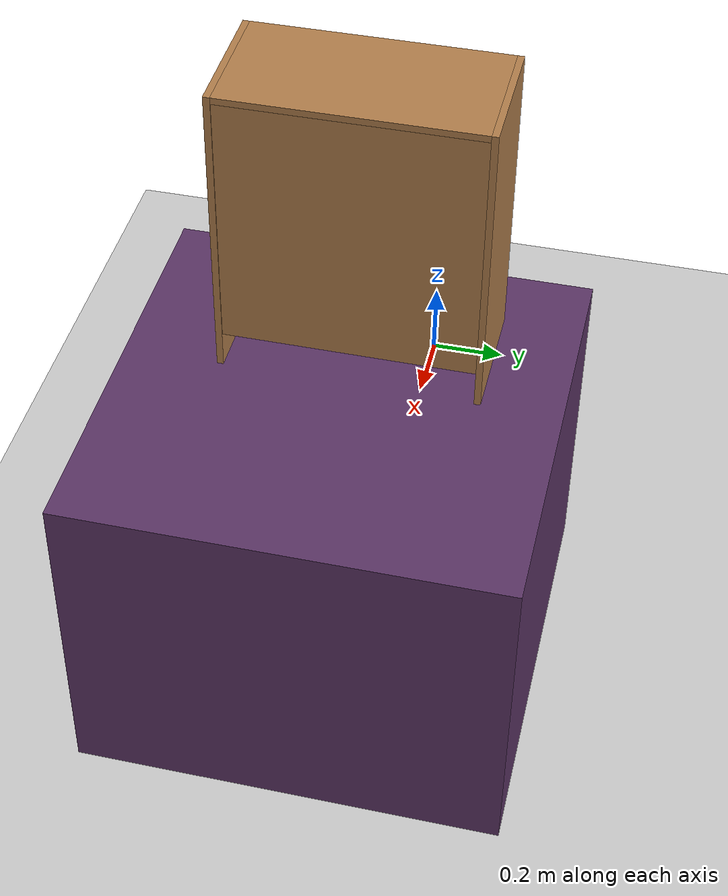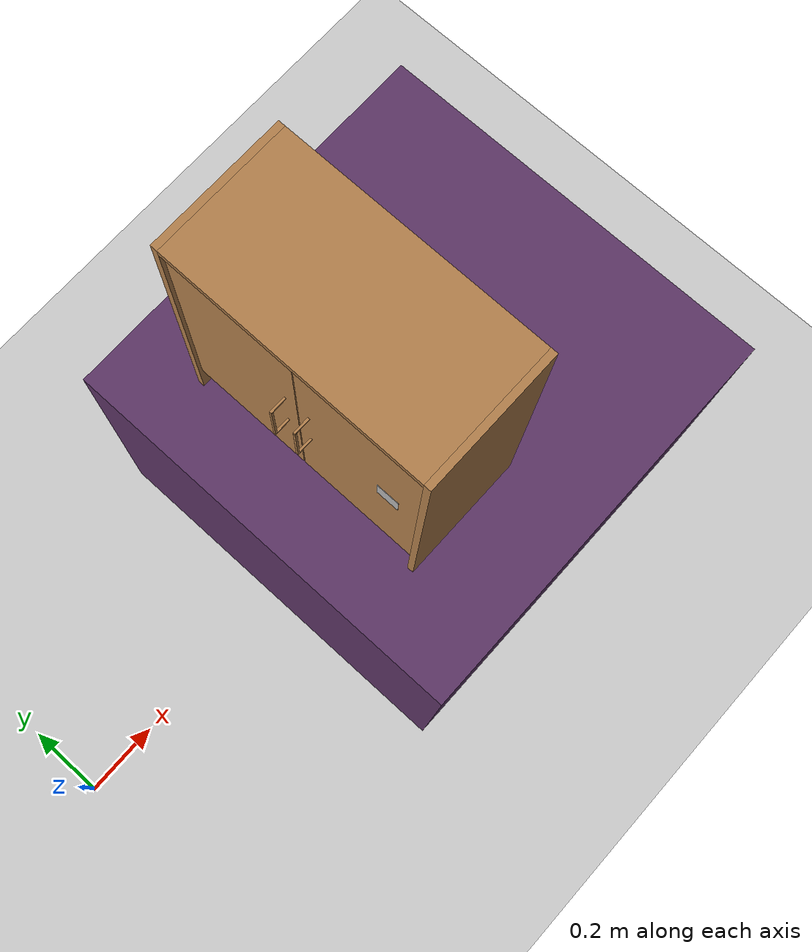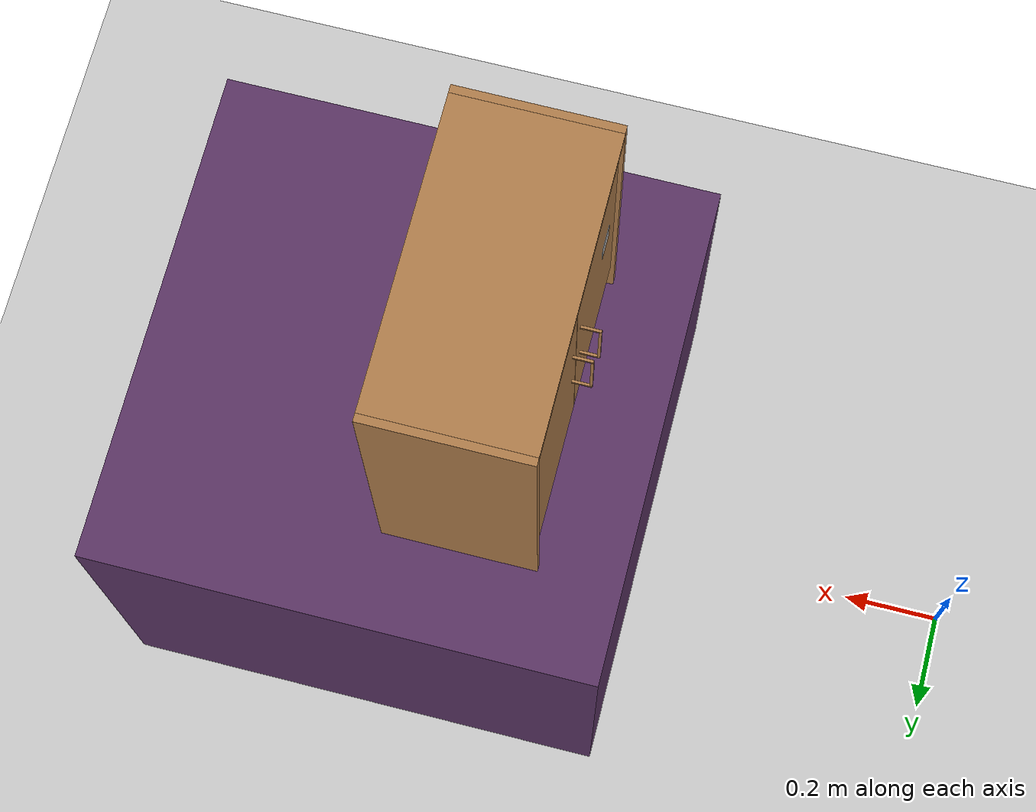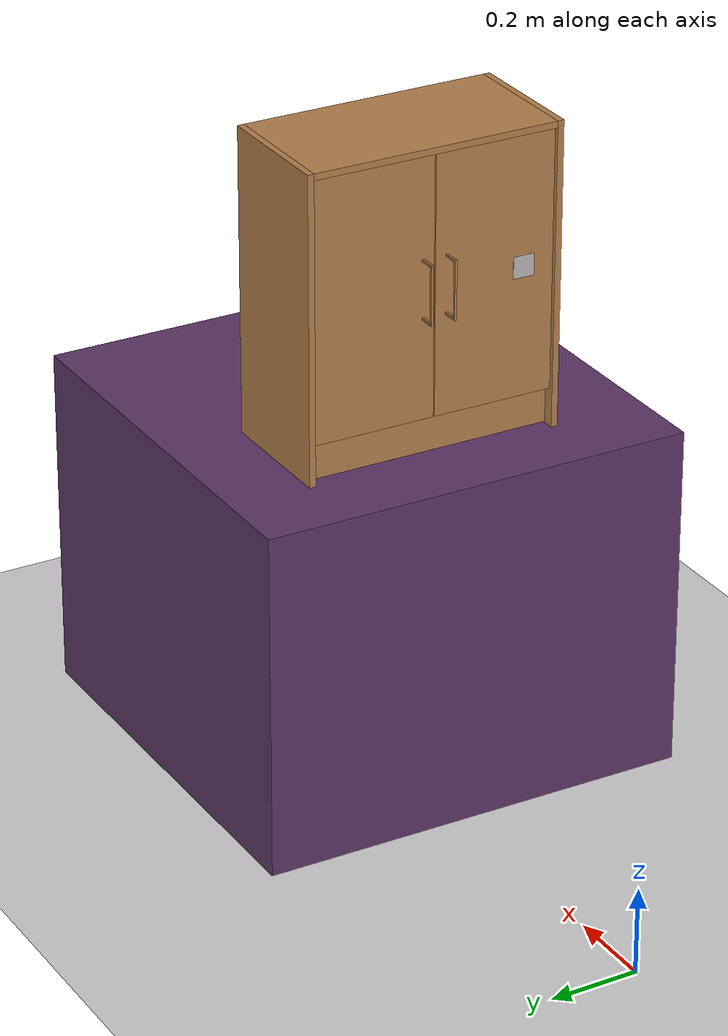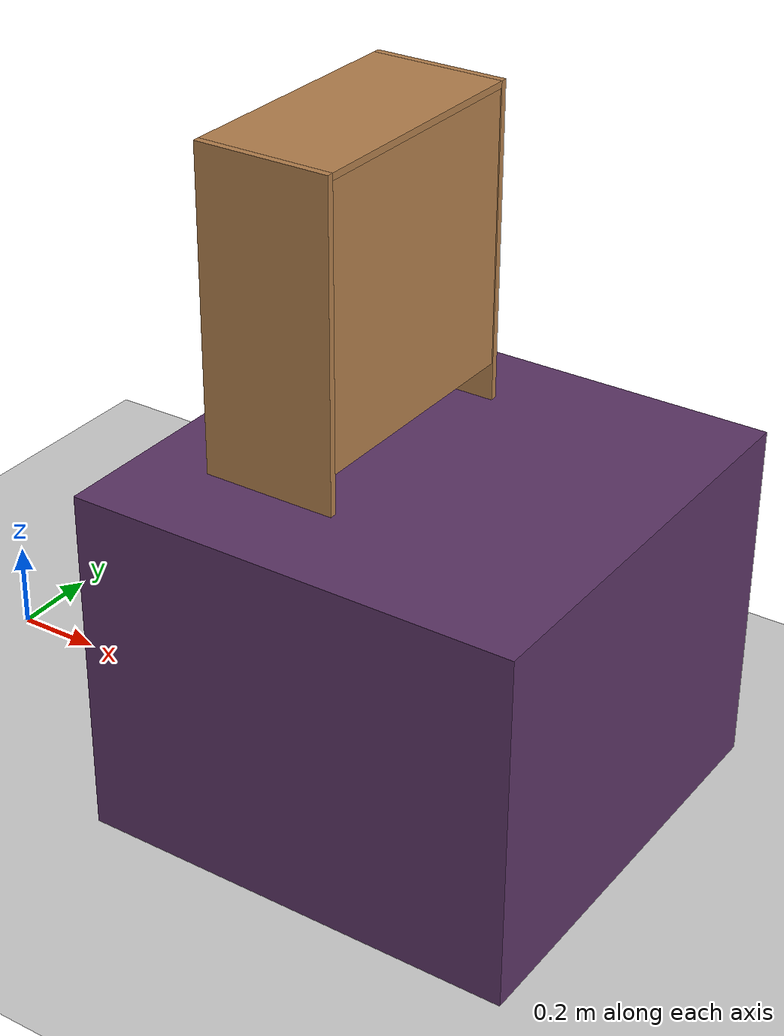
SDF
<sdf version="1.6">
 <world name="default">
  <light name="sun" type="directional">
   <pose>0 0 10 0 -0 0</pose>
   <diffuse>0.8 0.8 0.8 1</diffuse>
   <specular>0.2 0.2 0.2 1</specular>
   <attenuation>
    <range>1000</range>
    <constant>0.9</constant>
    <linear>0.01</linear>
    <quadratic>0.001</quadratic>
   </attenuation>
   <direction>-0.5 0.1 -0.9</direction>
  </light>
  <physics name="dart_2ms" default="0" type="dart">
   <max_step_size>0.002</max_step_size>
   <real_time_factor>1</real_time_factor>
   <real_time_update_rate>500</real_time_update_rate>
   <dart><solver><solver_type>pgs</solver_type></solver></dart>
  </physics>
  <model name="ground_plane">
   <static>1</static>
   <link name="link">
    <collision name="collision">
     <geometry><plane><normal>0 0 1</normal><size>100 100</size></plane></geometry>
     <surface>
      <contact><collide_bitmask>65535</collide_bitmask></contact>
      <friction><ode><mu>100</mu><mu2>50</mu2></ode></friction>
     </surface>
    </collision>
    <visual name="visual">
     <cast_shadows>0</cast_shadows>
     <geometry><plane><normal>0 0 1</normal><size>100 100</size></plane></geometry>
     <material>
      <script><uri>file://media/materials/scripts/gazebo.material</uri><name>Gazebo/Grey</name></script>
     </material>
    </visual>
   </link>
  </model>
  <gravity>0 0 -9.8</gravity>
  <magnetic_field>6e-06 2.3e-05 -4.2e-05</magnetic_field>
  <atmosphere type="adiabatic"/>
  <scene><ambient>0.4 0.4 0.4 1</ambient><background>0.7 0.7 0.7 1</background><shadows>1</shadows></scene>
  <spherical_coordinates>
   <surface_model>EARTH_WGS84</surface_model>
   <latitude_deg>0</latitude_deg>
   <longitude_deg>0</longitude_deg>
   <elevation>0</elevation>
   <heading_deg>0</heading_deg>
  </spherical_coordinates>
  <model name="cabinet_door_fragile">
   <plugin name="BreakableJoint" filename="libbreakable_joint.so">
    <joint_name>right_handle_joint</joint_name>
    <pos_min>-0.05</pos_min>
    <pos_max>0.05</pos_max>
   </plugin>
   <plugin name="BreakableJoint" filename="libbreakable_joint.so">
    <joint_name>right_handle_joint2</joint_name>
    <pos_min>-0.05</pos_min>
    <pos_max>0.05</pos_max>
   </plugin>
   <plugin name="BreakableJoint" filename="libbreakable_joint.so">
    <joint_name>left_handle_joint</joint_name>
    <pos_min>-0.05</pos_min>
    <pos_max>0.05</pos_max>
   </plugin>
   <plugin name="BreakableJoint" filename="libbreakable_joint.so">
    <joint_name>left_handle_joint2</joint_name>
    <pos_min>-0.05</pos_min>
    <pos_max>0.05</pos_max>
   </plugin>
   <link name="cabinet">
    <pose>0 0 0.35 0 -0 0</pose>
    <inertial>
     <mass>16</mass>
     <inertia><ixx>1.59</ixx><ixy>0</ixy><ixz>0</ixz><iyy>1.12</iyy><iyz>0</iyz><izz>0.91</izz></inertia>
    </inertial>
    <collision name="back">
     <pose>-0.14 0 0.035 0 -0 0</pose>
     <geometry><box><size>0.015 0.585 0.6</size></box></geometry>
    </collision>
    <visual name="visual1">
     <pose>-0.14 0 0.035 0 -0 0</pose>
     <geometry><box><size>0.015 0.585 0.6</size></box></geometry>
     <material>
      <script><uri>file://media/materials/scripts/gazebo.material</uri><name>Gazebo/Wood</name></script>
     </material>
    </visual>
    <collision name="left_side">
     <pose>0 -0.2925 0 0 -0 0</pose>
     <geometry><box><size>0.3 0.015 0.7</size></box></geometry>
    </collision>
    <visual name="visual2">
     <pose>0 -0.2925 0 0 -0 0</pose>
     <geometry><box><size>0.3 0.015 0.7</size></box></geometry>
     <material>
      <script><uri>file://media/materials/scripts/gazebo.material</uri><name>Gazebo/Wood</name></script>
     </material>
    </visual>
    <collision name="right_side">
     <pose>0 0.2925 0 0 -0 0</pose>
     <geometry><box><size>0.3 0.015 0.7</size></box></geometry>
    </collision>
    <visual name="visual3">
     <pose>0 0.2925 0 0 -0 0</pose>
     <geometry><box><size>0.3 0.015 0.7</size></box></geometry>
     <material>
      <script><uri>file://media/materials/scripts/gazebo.material</uri><name>Gazebo/Wood</name></script>
     </material>
    </visual>
    <collision name="bottom">
     <pose>-0.002 0 -0.2525 0 -0 0</pose>
     <geometry><box><size>0.26 0.57 0.015</size></box></geometry>
    </collision>
    <visual name="visual4">
     <pose>-0.002 0 -0.2525 0 -0 0</pose>
     <geometry><box><size>0.26 0.57 0.015</size></box></geometry>
     <material>
      <script><uri>file://media/materials/scripts/gazebo.material</uri><name>Gazebo/Wood</name></script>
     </material>
    </visual>
    <collision name="top">
     <pose>0 0 0.3425 0 -0 0</pose>
     <geometry><box><size>0.3 0.57 0.015</size></box></geometry>
    </collision>
    <visual name="visual5">
     <pose>0 0 0.3425 0 -0 0</pose>
     <geometry><box><size>0.3 0.57 0.015</size></box></geometry>
     <material>
      <script><uri>file://media/materials/scripts/gazebo.material</uri><name>Gazebo/Wood</name></script>
     </material>
    </visual>
    <collision name="middle_shelf">
     <pose>-0.002 0 0.0475 0 -0 0</pose>
     <geometry><box><size>0.26 0.57 0.015</size></box></geometry>
    </collision>
    <visual name="visual6">
     <pose>-0.002 0 0.0475 0 -0 0</pose>
     <geometry><box><size>0.26 0.57 0.015</size></box></geometry>
     <material>
      <script><uri>file://media/materials/scripts/gazebo.material</uri><name>Gazebo/Wood</name></script>
     </material>
    </visual>
    <collision name="low_front">
     <pose>0.115 0 -0.3025 0 -0 0</pose>
     <geometry><box><size>0.015 0.57 0.09</size></box></geometry>
    </collision>
    <visual name="visual7">
     <pose>0.115 0 -0.3025 0 -0 0</pose>
     <geometry><box><size>0.015 0.57 0.09</size></box></geometry>
     <material>
      <script><uri>file://media/materials/scripts/gazebo.material</uri><name>Gazebo/Wood</name></script>
     </material>
    </visual>
   </link>
   <link name="right_door">
    <pose>0.135 0.2835 0.3875 0 -0 0</pose>
    <inertial>
     <mass>1.7</mass>
     <pose>0 -0.141 0 0 -0 0</pose>
     <inertia><ixx>0.06</ixx><ixy>0</ixy><ixz>0</ixz><iyy>0.49</iyy><iyz>0</iyz><izz>0.111</izz></inertia>
    </inertial>
    <collision name="right_face">
     <pose>0 -0.141 0 0 -0 0</pose>
     <geometry><box><size>0.015 0.282 0.595</size></box></geometry>
    </collision>
    <visual name="right_face_vis">
     <pose>0 -0.141 0 0 -0 0</pose>
     <geometry><box><size>0.015 0.282 0.595</size></box></geometry>
     <material>
      <script><uri>file://media/materials/scripts/gazebo.material</uri><name>Gazebo/Wood</name></script>
     </material>
    </visual>
    <collision name="right_handle_up">
     <pose>0.02475 -0.2555 0.0656 0 -0 0</pose>
     <geometry><box><size>0.04 0.005 0.005</size></box></geometry>
    </collision>
    <visual name="right_handle_up_vis">
     <pose>0.02475 -0.2555 0.0656 0 -0 0</pose>
     <geometry><box><size>0.04 0.005 0.005</size></box></geometry>
     <material>
      <script><uri>file://media/materials/scripts/gazebo.material</uri><name>Gazebo/Wood</name></script>
     </material>
    </visual>
    <collision name="right_handle_bo">
     <pose>0.02475 -0.2555 -0.06542 0 -0 0</pose>
     <geometry><box><size>0.04 0.005 0.005</size></box></geometry>
    </collision>
    <visual name="right_handle_bo_vis">
     <pose>0.02475 -0.2555 -0.06542 0 -0 0</pose>
     <geometry><box><size>0.04 0.005 0.005</size></box></geometry>
     <material>
      <script><uri>file://media/materials/scripts/gazebo.material</uri><name>Gazebo/Wood</name></script>
     </material>
    </visual>
    <visual name="visual_marker_0">
     <pose>0.007 -0.07 0 1.57075 0 1.57075</pose>
     <geometry><mesh><uri>model://ar_marker_5cm_0/meshes/ar_marker_5cm.dae</uri></mesh></geometry>
    </visual>
   </link>
   <joint name="right_handle_joint" type="revolute">
    <parent>right_door</parent>
    <child>right_handle_dummy</child>
    <axis>
     <xyz>0 1 0</xyz>
     <limit><lower>-3.1</lower><upper>3.1</upper></limit>
     <dynamics>
      <damping>0.01</damping>
      <friction>1</friction>
      <spring_reference>0</spring_reference>
      <spring_stiffness>0</spring_stiffness>
     </dynamics>
     <use_parent_model_frame>1</use_parent_model_frame>
    </axis>
   </joint>
   <link name="right_handle_dummy">
    <pose>0.17804 0.028 0.3195 0 -0 0</pose>
    <inertial>
     <mass>0.1</mass>
     <pose>0 0 0.068 0 -0 0</pose>
     <inertia>
      <ixx>0.000154133</ixx>
      <ixy>0</ixy>
      <ixz>0</ixz>
      <iyy>0.000154133</iyy>
      <iyz>0</iyz>
      <izz>0.000154133</izz>
     </inertia>
    </inertial>
   </link>
   <joint name="right_handle_joint2" type="revolute">
    <parent>right_handle_dummy</parent>
    <child>right_handle</child>
    <axis>
     <xyz>1 0 0</xyz>
     <limit><lower>-3.1</lower><upper>3.1</upper></limit>
     <dynamics>
      <damping>0.01</damping>
      <friction>1</friction>
      <spring_reference>0</spring_reference>
      <spring_stiffness>0</spring_stiffness>
     </dynamics>
     <use_parent_model_frame>1</use_parent_model_frame>
    </axis>
   </joint>
   <link name="right_handle">
    <pose>0.17804 0.028 0.3195 0 -0 0</pose>
    <inertial>
     <mass>0.1</mass>
     <pose>0 0 0.068 0 -0 0</pose>
     <inertia>
      <ixx>0.000154133</ixx>
      <ixy>0</ixy>
      <ixz>0</ixz>
      <iyy>0.000154133</iyy>
      <iyz>0</iyz>
      <izz>0.000154133</izz>
     </inertia>
    </inertial>
    <collision name="right_handle">
     <pose>0 0 0.068 0 -0 0</pose>
     <geometry><box><size>0.005 0.005 0.136</size></box></geometry>
    </collision>
    <visual name="right_handle_vis">
     <pose>0 0 0.068 0 -0 0</pose>
     <geometry><box><size>0.005 0.005 0.136</size></box></geometry>
     <material>
      <script><uri>file://media/materials/scripts/gazebo.material</uri><name>Gazebo/Wood</name></script>
     </material>
    </visual>
   </link>
   <joint name="right_joint" type="revolute">
    <parent>cabinet</parent>
    <child>right_door</child>
    <axis>
     <xyz>0 0 1</xyz>
     <limit><lower>-0.001</lower><upper>2.36</upper></limit>
     <dynamics>
      <damping>0.5</damping>
      <friction>0.1</friction>
      <spring_reference>0</spring_reference>
      <spring_stiffness>0</spring_stiffness>
     </dynamics>
     <use_parent_model_frame>1</use_parent_model_frame>
    </axis>
   </joint>
   <link name="left_door">
    <pose>0.135 -0.2835 0.3875 0 -0 0</pose>
    <inertial>
     <mass>1</mass>
     <pose>0 0.141 0 0 -0 0</pose>
     <inertia><ixx>0.06</ixx><ixy>0</ixy><ixz>0</ixz><iyy>0.49</iyy><iyz>0</iyz><izz>0.111</izz></inertia>
    </inertial>
    <collision name="left_face">
     <pose>0 0.141 0 0 -0 0</pose>
     <geometry><box><size>0.015 0.282 0.595</size></box></geometry>
    </collision>
    <visual name="left_face_vis">
     <pose>0 0.141 0 0 -0 0</pose>
     <geometry><box><size>0.015 0.282 0.595</size></box></geometry>
     <material>
      <script><uri>file://media/materials/scripts/gazebo.material</uri><name>Gazebo/Wood</name></script>
     </material>
    </visual>
    <collision name="left_handle_up">
     <pose>0.02475 0.2555 0.0656 0 -0 0</pose>
     <geometry><box><size>0.04 0.005 0.005</size></box></geometry>
    </collision>
    <visual name="left_handle_up_vis">
     <pose>0.02475 0.2555 0.0656 0 -0 0</pose>
     <geometry><box><size>0.04 0.005 0.005</size></box></geometry>
     <material>
      <script><uri>file://media/materials/scripts/gazebo.material</uri><name>Gazebo/Wood</name></script>
     </material>
    </visual>
    <collision name="left_handle_bo">
     <pose>0.02475 0.2555 -0.06542 0 -0 0</pose>
     <geometry><box><size>0.04 0.005 0.005</size></box></geometry>
    </collision>
    <visual name="left_handle_bo_vis">
     <pose>0.02475 0.2555 -0.06542 0 -0 0</pose>
     <geometry><box><size>0.04 0.005 0.005</size></box></geometry>
     <material>
      <script><uri>file://media/materials/scripts/gazebo.material</uri><name>Gazebo/Wood</name></script>
     </material>
    </visual>
   </link>
   <joint name="left_joint" type="revolute">
    <parent>cabinet</parent>
    <child>left_door</child>
    <axis>
     <xyz>0 0 1</xyz>
     <limit><lower>-2.36</lower><upper>0.001</upper></limit>
     <dynamics>
      <damping>0.5</damping>
      <friction>0.1</friction>
      <spring_reference>0</spring_reference>
      <spring_stiffness>0</spring_stiffness>
     </dynamics>
     <use_parent_model_frame>1</use_parent_model_frame>
    </axis>
   </joint>
   <joint name="left_handle_joint" type="revolute">
    <parent>left_door</parent>
    <child>left_handle_dummy</child>
    <axis>
     <xyz>0 1 0</xyz>
     <limit><lower>-3.1</lower><upper>3.1</upper></limit>
     <dynamics>
      <damping>0.01</damping>
      <friction>1</friction>
      <spring_reference>0</spring_reference>
      <spring_stiffness>0</spring_stiffness>
     </dynamics>
     <use_parent_model_frame>1</use_parent_model_frame>
    </axis>
   </joint>
   <link name="left_handle_dummy">
    <pose>0.17804 -0.028 0.3195 0 -0 0</pose>
    <inertial>
     <mass>0.1</mass>
     <pose>0 0 0.068 0 -0 0</pose>
     <inertia>
      <ixx>0.000154133</ixx>
      <ixy>0</ixy>
      <ixz>0</ixz>
      <iyy>0.000154133</iyy>
      <iyz>0</iyz>
      <izz>0.000154133</izz>
     </inertia>
    </inertial>
   </link>
   <joint name="left_handle_joint2" type="revolute">
    <parent>left_handle_dummy</parent>
    <child>left_handle</child>
    <axis>
     <xyz>1 0 0</xyz>
     <limit><lower>-3.1</lower><upper>3.1</upper></limit>
     <dynamics>
      <damping>0.01</damping>
      <friction>1</friction>
      <spring_reference>0</spring_reference>
      <spring_stiffness>0</spring_stiffness>
     </dynamics>
     <use_parent_model_frame>1</use_parent_model_frame>
    </axis>
   </joint>
   <link name="left_handle">
    <pose>0.17804 -0.028 0.3195 0 -0 0</pose>
    <inertial>
     <mass>0.1</mass>
     <pose>0 0 0.068 0 -0 0</pose>
     <inertia>
      <ixx>0.000154133</ixx>
      <ixy>0</ixy>
      <ixz>0</ixz>
      <iyy>0.000154133</iyy>
      <iyz>0</iyz>
      <izz>0.000154133</izz>
     </inertia>
    </inertial>
    <collision name="left_handle">
     <pose>0 0 0.068 0 -0 0</pose>
     <geometry><box><size>0.005 0.005 0.136</size></box></geometry>
    </collision>
    <visual name="left_handle_vis">
     <pose>0 0 0.068 0 -0 0</pose>
     <geometry><box><size>0.005 0.005 0.136</size></box></geometry>
     <material>
      <script><uri>file://media/materials/scripts/gazebo.material</uri><name>Gazebo/Wood</name></script>
     </material>
    </visual>
   </link>
   <pose>0.972349 0.000889 0.816731 0 -0 3.14</pose>
  </model>
  <model name="unit_box">
   <link name="link">
    <inertial>
     <mass>1</mass>
     <inertia>
      <ixx>0.166667</ixx>
      <ixy>0</ixy>
      <ixz>0</ixz>
      <iyy>0.166667</iyy>
      <iyz>0</iyz>
      <izz>0.166667</izz>
     </inertia>
    </inertial>
    <visual name="visual">
     <geometry><box><size>1 1 0.8</size></box></geometry>
     <material>
      <script><name>Gazebo/Grey</name><uri>file://media/materials/scripts/gazebo.material</uri></script>
      <shader type="pixel"><normal_map>__default__</normal_map></shader>
      <ambient>0 1 0 1</ambient>
      <diffuse>0.361 0.208 0.4 1</diffuse>
      <specular>0.361 0.208 0.4 1</specular>
      <emissive>0.361 0.208 0.4 1</emissive>
     </material>
    </visual>
    <collision name="collision">
     <geometry><box><size>1 1 0.8</size></box></geometry>
     <surface>
      <friction>
       <ode><mu>1</mu><mu2>1</mu2><fdir1>0 0 0</fdir1><slip1>0</slip1><slip2>0</slip2></ode>
       <torsional>
        <coefficient>1</coefficient>
        <patch_radius>0</patch_radius>
        <surface_radius>0</surface_radius>
        <use_patch_radius>1</use_patch_radius>
        <ode><slip>0</slip></ode>
       </torsional>
      </friction>
      <bounce><restitution_coefficient>0</restitution_coefficient><threshold>1e+06</threshold></bounce>
      <contact>
       <collide_without_contact>0</collide_without_contact>
       <collide_without_contact_bitmask>1</collide_without_contact_bitmask>
       <collide_bitmask>1</collide_bitmask>
       <ode>
        <soft_cfm>0</soft_cfm>
        <soft_erp>0.2</soft_erp>
        <kp>1e+13</kp>
        <kd>1</kd>
        <max_vel>0.01</max_vel>
        <min_depth>0</min_depth>
       </ode>
       <bullet>
        <split_impulse>1</split_impulse>
        <split_impulse_penetration_threshold>-0.01</split_impulse_penetration_threshold>
        <soft_cfm>0</soft_cfm>
        <soft_erp>0.2</soft_erp>
        <kp>1e+13</kp>
        <kd>1</kd>
       </bullet>
      </contact>
     </surface>
    </collision>
   </link>
   <static>1</static>
   <pose>1.16223 -0.016454 0.416731 0 -0 0</pose>
  </model>
 </world>
</sdf>
